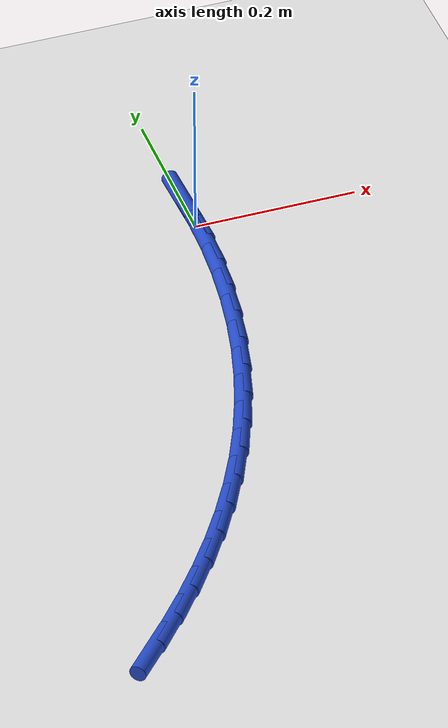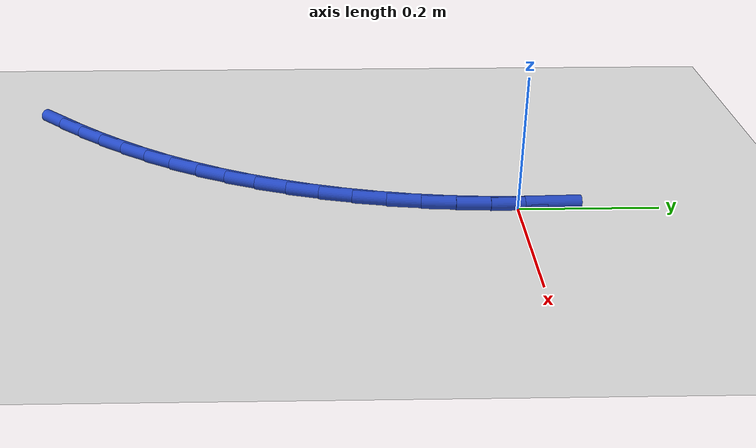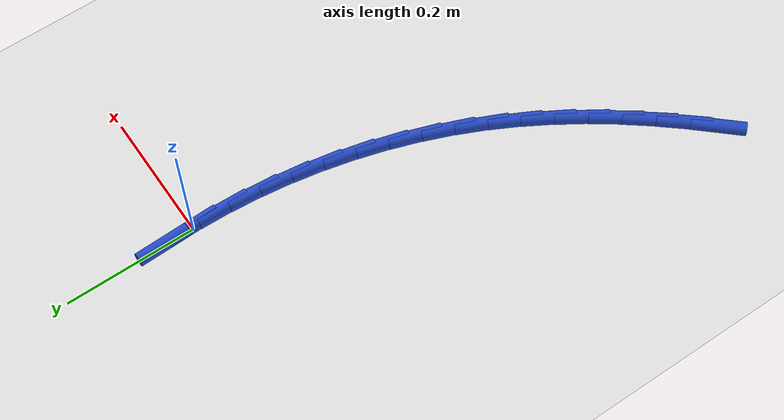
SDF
<sdf version="1.6">
 <world name="default">
  <model name="ground_plane">
   <static>1</static>
   <link name="link">
    <collision name="collision">
     <geometry><plane><normal>0 0 1</normal><size>100 100</size></plane></geometry>
     <surface><friction><ode><mu>100</mu><mu2>50</mu2></ode></friction></surface>
    </collision>
    <visual name="visual">
     <cast_shadows>0</cast_shadows>
     <geometry><plane><normal>0 0 1</normal><size>100 100</size></plane></geometry>
     <material>
      <script><uri>file://media/materials/scripts/gazebo.material</uri><name>Gazebo/WhiteGlow</name></script>
     </material>
    </visual>
   </link>
  </model>
  <model name="line">
   <link name="link_0">
    <pose>-1.734723475976807e-18 2.7755575615628914e-17 0.01 0 1.57 -1.5403953769960061</pose>
    <collision name="collision">
     <geometry><cylinder><radius>0.01</radius><length>0.08</length></cylinder></geometry>
    </collision>
    <visual name="visual">
     <material>
      <script><name>Gazebo/Blue</name><uri>file://media/materials/scripts/gazebo.material</uri></script>
     </material>
     <geometry><cylinder><radius>0.01</radius><length>0.08</length></cylinder></geometry>
    </visual>
   </link>
   <link name="link_134">
    <pose>-0.289612268442482 -0.7011077276362959 0.01 0 1.57 0.8326679071848052</pose>
    <collision name="collision">
     <geometry><cylinder><radius>0.01</radius><length>0.08</length></cylinder></geometry>
    </collision>
    <visual name="visual">
     <material>
      <script><name>Gazebo/Blue</name><uri>file://media/materials/scripts/gazebo.material</uri></script>
     </material>
     <geometry><cylinder><radius>0.01</radius><length>0.08</length></cylinder></geometry>
    </visual>
   </link>
   <link name="link_135">
    <pose>-0.25660393294041034 -0.6648214097881768 0.01 0 1.57 0.8699649230507398</pose>
    <collision name="collision">
     <geometry><cylinder><radius>0.01</radius><length>0.08</length></cylinder></geometry>
    </collision>
    <visual name="visual">
     <material>
      <script><name>Gazebo/Blue</name><uri>file://media/materials/scripts/gazebo.material</uri></script>
     </material>
     <geometry><cylinder><radius>0.01</radius><length>0.08</length></cylinder></geometry>
    </visual>
   </link>
   <link name="link_136">
    <pose>-0.22512527523025583 -0.6275116296610788 0.01 0 1.57 0.909896090224213</pose>
    <collision name="collision">
     <geometry><cylinder><radius>0.01</radius><length>0.08</length></cylinder></geometry>
    </collision>
    <visual name="visual">
     <material>
      <script><name>Gazebo/Blue</name><uri>file://media/materials/scripts/gazebo.material</uri></script>
     </material>
     <geometry><cylinder><radius>0.01</radius><length>0.08</length></cylinder></geometry>
    </visual>
   </link>
   <link name="link_137">
    <pose>-0.19529220560301042 -0.5891435108338348 0.01 0 1.57 0.9524808176041747</pose>
    <collision name="collision">
     <geometry><cylinder><radius>0.01</radius><length>0.08</length></cylinder></geometry>
    </collision>
    <visual name="visual">
     <material>
      <script><name>Gazebo/Blue</name><uri>file://media/materials/scripts/gazebo.material</uri></script>
     </material>
     <geometry><cylinder><radius>0.01</radius><length>0.08</length></cylinder></geometry>
    </visual>
   </link>
   <link name="link_138">
    <pose>-0.16722063434966566 -0.5496821768852769 0.01 0 1.57 0.9977008290729766</pose>
    <collision name="collision">
     <geometry><cylinder><radius>0.01</radius><length>0.08</length></cylinder></geometry>
    </collision>
    <visual name="visual">
     <material>
      <script><name>Gazebo/Blue</name><uri>file://media/materials/scripts/gazebo.material</uri></script>
     </material>
     <geometry><cylinder><radius>0.01</radius><length>0.08</length></cylinder></geometry>
    </visual>
   </link>
   <link name="link_139">
    <pose>-0.14102647176121183 -0.5090927513942357 0.01 0 1.57 1.0454911652928658</pose>
    <collision name="collision">
     <geometry><cylinder><radius>0.01</radius><length>0.08</length></cylinder></geometry>
    </collision>
    <visual name="visual">
     <material>
      <script><name>Gazebo/Blue</name><uri>file://media/materials/scripts/gazebo.material</uri></script>
     </material>
     <geometry><cylinder><radius>0.01</radius><length>0.08</length></cylinder></geometry>
    </visual>
   </link>
   <link name="link_140">
    <pose>-0.11682562812864106 -0.4673403579395449 0.01 0 1.57 1.0957317949545033</pose>
    <collision name="collision">
     <geometry><cylinder><radius>0.01</radius><length>0.08</length></cylinder></geometry>
    </collision>
    <visual name="visual">
     <material>
      <script><name>Gazebo/Blue</name><uri>file://media/materials/scripts/gazebo.material</uri></script>
     </material>
     <geometry><cylinder><radius>0.01</radius><length>0.08</length></cylinder></geometry>
    </visual>
   </link>
   <link name="link_141">
    <pose>-0.09473401374294381 -0.42439012010003485 0.01 0 1.57 1.1481162629871833</pose>
    <collision name="collision">
     <geometry><cylinder><radius>0.01</radius><length>0.08</length></cylinder></geometry>
    </collision>
    <visual name="visual">
     <material>
      <script><name>Gazebo/Blue</name><uri>file://media/materials/scripts/gazebo.material</uri></script>
     </material>
     <geometry><cylinder><radius>0.01</radius><length>0.08</length></cylinder></geometry>
    </visual>
   </link>
   <link name="link_142">
    <pose>-0.07486420618516572 -0.38021446984655183 0.01 0 1.57 1.2006294379728617</pose>
    <collision name="collision">
     <geometry><cylinder><radius>0.01</radius><length>0.08</length></cylinder></geometry>
    </collision>
    <visual name="visual">
     <material>
      <script><name>Gazebo/Blue</name><uri>file://media/materials/scripts/gazebo.material</uri></script>
     </material>
     <geometry><cylinder><radius>0.01</radius><length>0.08</length></cylinder></geometry>
    </visual>
   </link>
   <link name="link_143">
    <pose>-0.05727832761174671 -0.33489648424904106 0.01 0 1.57 1.25199407117981</pose>
    <collision name="collision">
     <geometry><cylinder><radius>0.01</radius><length>0.08</length></cylinder></geometry>
    </collision>
    <visual name="visual">
     <material>
      <script><name>Gazebo/Blue</name><uri>file://media/materials/scripts/gazebo.material</uri></script>
     </material>
     <geometry><cylinder><radius>0.01</radius><length>0.08</length></cylinder></geometry>
    </visual>
   </link>
   <link name="link_144">
    <pose>-0.04199935643949464 -0.28860507976903643 0.01 0 1.57 1.3024428805688135</pose>
    <collision name="collision">
     <geometry><cylinder><radius>0.01</radius><length>0.08</length></cylinder></geometry>
    </collision>
    <visual name="visual">
     <material>
      <script><name>Gazebo/Blue</name><uri>file://media/materials/scripts/gazebo.material</uri></script>
     </material>
     <geometry><cylinder><radius>0.01</radius><length>0.08</length></cylinder></geometry>
    </visual>
   </link>
   <link name="link_145">
    <pose>-0.029049246510722607 -0.24151141968588496 0.01 0 1.57 1.3522512961191107</pose>
    <collision name="collision">
     <geometry><cylinder><radius>0.01</radius><length>0.08</length></cylinder></geometry>
    </collision>
    <visual name="visual">
     <material>
      <script><name>Gazebo/Blue</name><uri>file://media/materials/scripts/gazebo.material</uri></script>
     </material>
     <geometry><cylinder><radius>0.01</radius><length>0.08</length></cylinder></geometry>
    </visual>
   </link>
   <link name="link_146">
    <pose>-0.01844995166774278 -0.19378666727893049 0.01 0 1.57 1.401697662154213</pose>
    <collision name="collision">
     <geometry><cylinder><radius>0.01</radius><length>0.08</length></cylinder></geometry>
    </collision>
    <visual name="visual">
     <material>
      <script><name>Gazebo/Blue</name><uri>file://media/materials/scripts/gazebo.material</uri></script>
     </material>
     <geometry><cylinder><radius>0.01</radius><length>0.08</length></cylinder></geometry>
    </visual>
   </link>
   <link name="link_147">
    <pose>-0.010223425752868005 -0.14560198582751913 0.01 0 1.57 1.4510625709378489</pose>
    <collision name="collision">
     <geometry><cylinder><radius>0.01</radius><length>0.08</length></cylinder></geometry>
    </collision>
    <visual name="visual">
     <material>
      <script><name>Gazebo/Blue</name><uri>file://media/materials/scripts/gazebo.material</uri></script>
     </material>
     <geometry><cylinder><radius>0.01</radius><length>0.08</length></cylinder></geometry>
    </visual>
   </link>
   <link name="link_148">
    <pose>-0.004391622608410966 -0.0971285386109972 0.01 0 1.57 1.5006286740927315</pose>
    <collision name="collision">
     <geometry><cylinder><radius>0.01</radius><length>0.08</length></cylinder></geometry>
    </collision>
    <visual name="visual">
     <material>
      <script><name>Gazebo/Blue</name><uri>file://media/materials/scripts/gazebo.material</uri></script>
     </material>
     <geometry><cylinder><radius>0.01</radius><length>0.08</length></cylinder></geometry>
    </visual>
   </link>
   <link name="link_149">
    <pose>-0.0009764960766840605 -0.04853748890870849 0.01 0 1.57 1.550680651568072</pose>
    <collision name="collision">
     <geometry><cylinder><radius>0.01</radius><length>0.08</length></cylinder></geometry>
    </collision>
    <visual name="visual">
     <material>
      <script><name>Gazebo/Blue</name><uri>file://media/materials/scripts/gazebo.material</uri></script>
     </material>
     <geometry><cylinder><radius>0.01</radius><length>0.08</length></cylinder></geometry>
    </visual>
   </link>
   <link name="link_150">
    <pose>-2.2551405187698492e-17 -8.326672684688674e-17 0.01 0 1.57 -1.5400876375631052</pose>
    <collision name="collision">
     <geometry><cylinder><radius>0.01</radius><length>0.08</length></cylinder></geometry>
    </collision>
    <visual name="visual">
     <material>
      <script><name>Gazebo/Blue</name><uri>file://media/materials/scripts/gazebo.material</uri></script>
     </material>
     <geometry><cylinder><radius>0.01</radius><length>0.08</length></cylinder></geometry>
    </visual>
   </link>
   <link name="link_151">
    <pose>-0.001484088220671453 0.048312764835785 0.01 0 1.57 -1.5400876375631047</pose>
    <collision name="collision">
     <geometry><cylinder><radius>0.01</radius><length>0.08</length></cylinder></geometry>
    </collision>
    <visual name="visual">
     <material>
      <script><name>Gazebo/Blue</name><uri>file://media/materials/scripts/gazebo.material</uri></script>
     </material>
     <geometry><cylinder><radius>0.01</radius><length>0.08</length></cylinder></geometry>
    </visual>
   </link>
  </model>
 </world>
</sdf>
